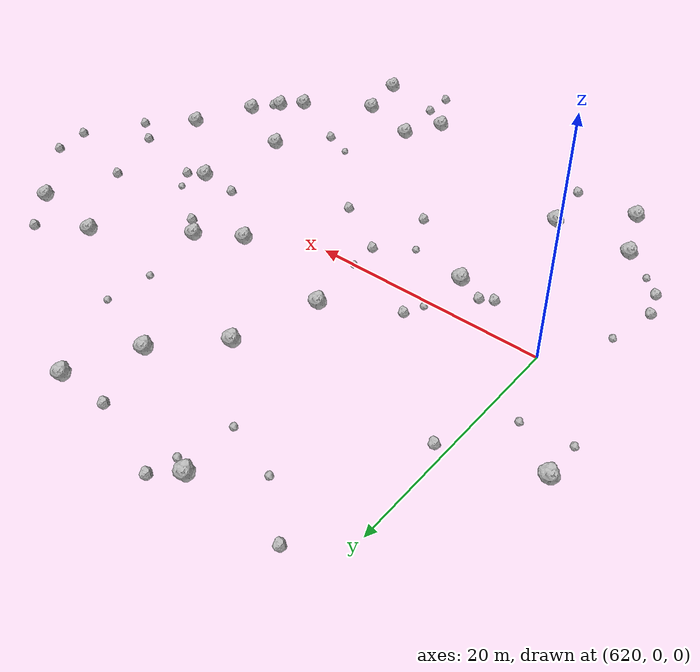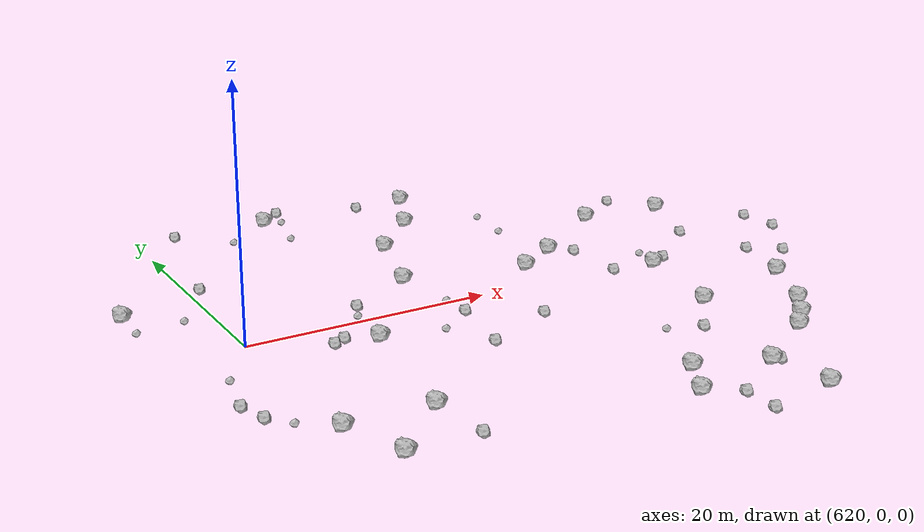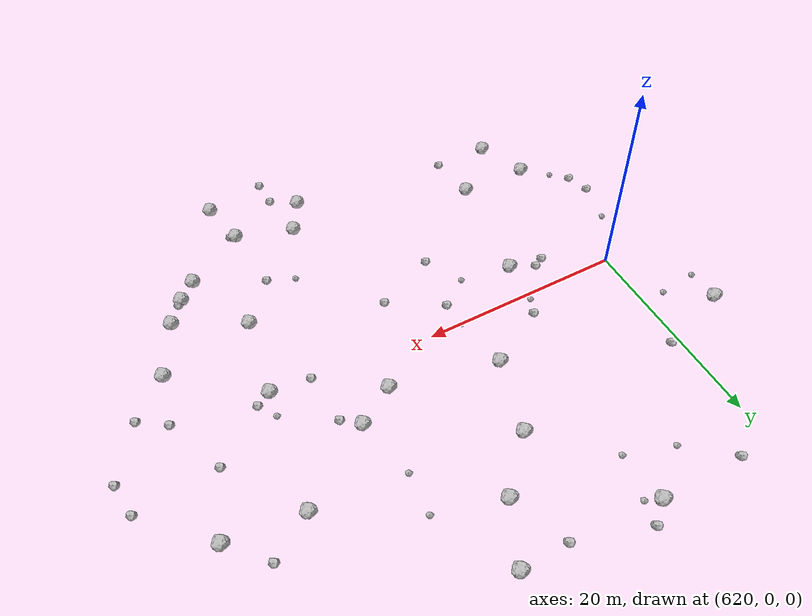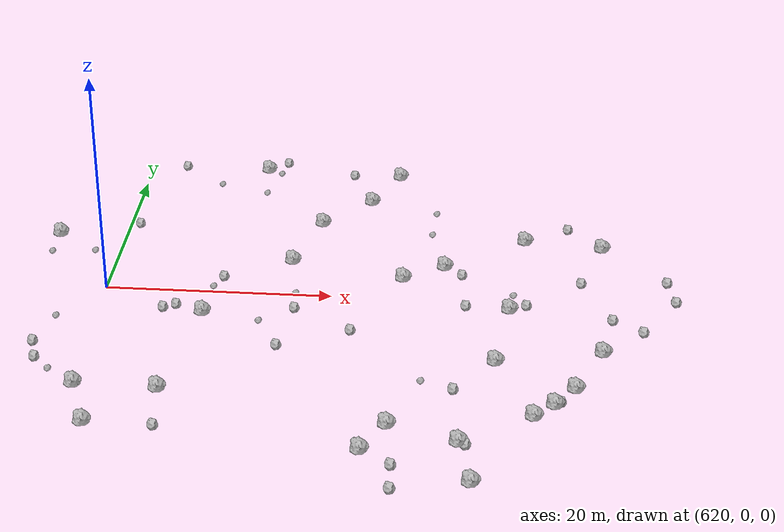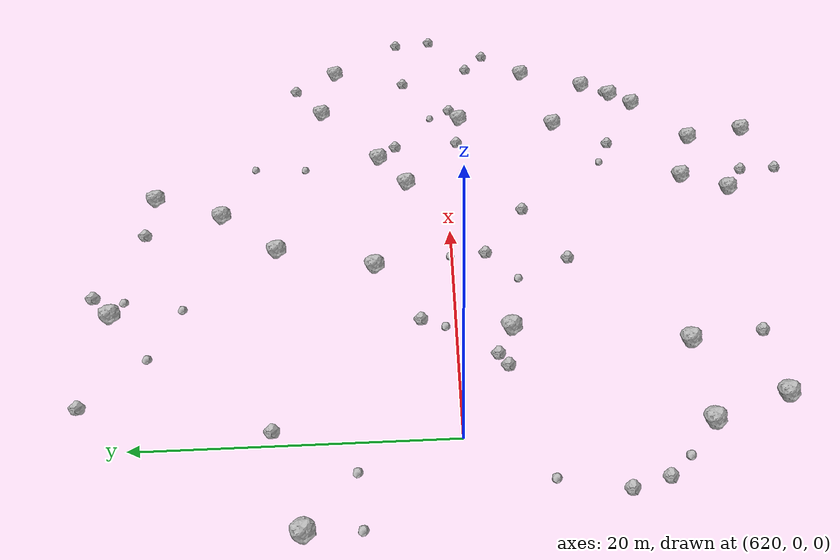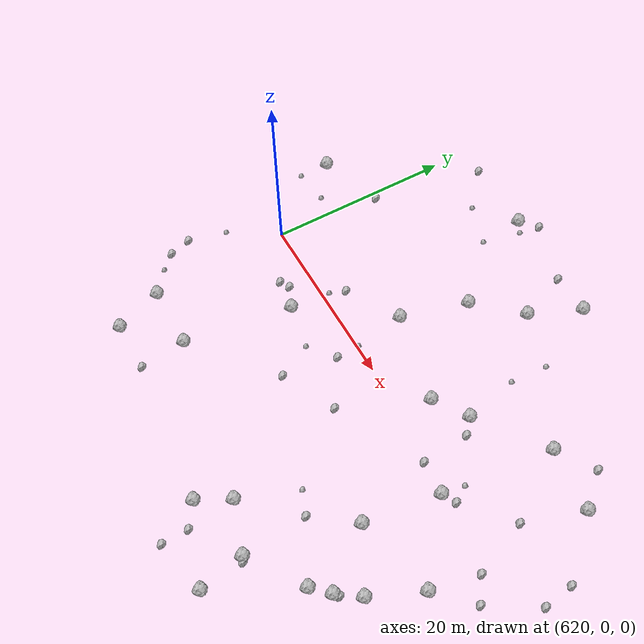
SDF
<sdf version="1.6">
 <world name="default">
  <include><uri>model://sun</uri></include>
  <model name="rock1_16_3">
   <include><uri>model://rock1</uri><pose>613.8526762108388 9.124440095897938 0.5 0 0 0</pose></include>
  </model>
  <model name="rock1_16_4">
   <include><uri>model://rock1</uri><pose>622.4320624749553 -20.544352006153765 0.5 0 0 0</pose></include>
  </model>
  <model name="rock1_16_5">
   <include><uri>model://rock1</uri><pose>663.293215973286 -7.634188353999555 0.5 0 0 0</pose></include>
  </model>
  <model name="rock1_16_6">
   <include><uri>model://rock1</uri><pose>638.0518589348472 12.931914421081423 0.5 0 0 0</pose></include>
  </model>
  <model name="rock1_16_7">
   <include><uri>model://rock1</uri><pose>655.5514319088636 -1.3592448641450119 0.5 0 0 0</pose></include>
  </model>
  <model name="rock1_16_8">
   <include><uri>model://rock1</uri><pose>631.6341331656774 23.62280296202421 0.5 0 0 0</pose></include>
  </model>
  <model name="rock1_16_9">
   <include><uri>model://rock1</uri><pose>644.8129737432026 23.050013467155416 0.5 0 0 0</pose></include>
  </model>
  <model name="rock1_16_10">
   <include><uri>model://rock1</uri><pose>660.8614911359022 -13.067576330176468 0.5 0 0 0</pose></include>
  </model>
  <model name="rock1_16_11">
   <include><uri>model://rock1</uri><pose>644.195002368872 -22.54371066841272 0.5 0 0 0</pose></include>
  </model>
  <model name="rock1_16_12">
   <include><uri>model://rock1</uri><pose>627.4102066938955 -15.524549203066107 0.5 0 0 0</pose></include>
  </model>
  <model name="rock1_16_13">
   <include><uri>model://rock1</uri><pose>656.9913572059183 10.792682444482665 0.5 0 0 0</pose></include>
  </model>
  <model name="rock1_16_14">
   <include><uri>model://rock1</uri><pose>620.5338285778649 -15.37924103850991 0.5 0 0 0</pose></include>
  </model>
  <model name="rock1_16_15">
   <include><uri>model://rock1</uri><pose>642.3785425523961 17.564204736193474 0.5 0 0 0</pose></include>
  </model>
  <model name="rock1_16_16">
   <include><uri>model://rock1</uri><pose>629.1868321765535 -3.72118863828225 0.5 0 0 0</pose></include>
  </model>
  <model name="rock1_16_17">
   <include><uri>model://rock1</uri><pose>652.7103533323094 -25.9343065552152 0.5 0 0 0</pose></include>
  </model>
  <model name="rock1_16_18">
   <include><uri>model://rock1</uri><pose>651.6620231710509 -21.002237406919484 0.5 0 0 0</pose></include>
  </model>
  <model name="rock1_16_19">
   <include><uri>model://rock1</uri><pose>636.0069230360912 5.659931086644292 0.5 0 0 0</pose></include>
  </model>
  <model name="rock1_16_20">
   <include><uri>model://rock1</uri><pose>659.1499994113229 -15.436293958323574 0.5 0 0 0</pose></include>
  </model>
  <model name="rock1_16_21">
   <include><uri>model://rock1</uri><pose>646.0433484529614 -19.095913451849608 0.5 0 0 0</pose></include>
  </model>
  <model name="rock1_16_22">
   <include><uri>model://rock1</uri><pose>663.9962754420927 9.956243544458253 0.5 0 0 0</pose></include>
  </model>
  <model name="rock1_16_23">
   <include><uri>model://rock1</uri><pose>654.4000216762316 -9.590869413534055 0.5 0 0 0</pose></include>
  </model>
  <model name="rock1_16_24">
   <include><uri>model://rock1</uri><pose>657.4626697567522 -17.151130039013 0.5 0 0 0</pose></include>
  </model>
  <model name="rock1_16_25">
   <include><uri>model://rock1</uri><pose>646.1206910915636 3.302308978528643 0.5 0 0 0</pose></include>
  </model>
  <model name="rock1_16_26">
   <include><uri>model://rock1</uri><pose>649.7554522993543 5.609845139659143 0.5 0 0 0</pose></include>
  </model>
  <model name="rock2_16_0">
   <include><uri>model://rock2</uri><pose>659.5825866229188 -14.992361467997881 0.3 0 0 0</pose></include>
  </model>
  <model name="rock2_16_1">
   <include><uri>model://rock2</uri><pose>620.9061436572825 11.54649451648028 0.3 0 0 0</pose></include>
  </model>
  <model name="rock2_16_2">
   <include><uri>model://rock2</uri><pose>637.0008320068011 -2.4770316226196236 0.3 0 0 0</pose></include>
  </model>
  <model name="rock2_16_3">
   <include><uri>model://rock2</uri><pose>651.0233935441333 -13.86329356608426 0.3 0 0 0</pose></include>
  </model>
  <model name="rock2_16_4">
   <include><uri>model://rock2</uri><pose>626.7243095715149 -2.6296835037631325 0.3 0 0 0</pose></include>
  </model>
  <model name="rock2_16_5">
   <include><uri>model://rock2</uri><pose>651.755238257956 -0.9960088112812144 0.3 0 0 0</pose></include>
  </model>
  <model name="rock2_16_6">
   <include><uri>model://rock2</uri><pose>646.6499828109526 -24.231172277116368 0.3 0 0 0</pose></include>
  </model>
  <model name="rock2_16_7">
   <include><uri>model://rock2</uri><pose>660.9566257513176 13.375419039794792 0.3 0 0 0</pose></include>
  </model>
  <model name="rock2_16_8">
   <include><uri>model://rock2</uri><pose>646.7506987452318 -27.112224575122664 0.3 0 0 0</pose></include>
  </model>
  <model name="rock2_16_9">
   <include><uri>model://rock2</uri><pose>661.8440077020302 3.5714443082247413 0.3 0 0 0</pose></include>
  </model>
  <model name="rock2_16_10">
   <include><uri>model://rock2</uri><pose>627.99391201705 -20.577556492526845 0.3 0 0 0</pose></include>
  </model>
  <model name="rock2_16_11">
   <include><uri>model://rock2</uri><pose>664.3073532121014 -2.4067202160684715 0.3 0 0 0</pose></include>
  </model>
  <model name="rock2_16_12">
   <include><uri>model://rock2</uri><pose>630.1966055433386 2.392264962481157 0.3 0 0 0</pose></include>
  </model>
  <model name="rock2_16_13">
   <include><uri>model://rock2</uri><pose>652.1708164191228 -21.216823713505452 0.3 0 0 0</pose></include>
  </model>
  <model name="rock2_16_14">
   <include><uri>model://rock2</uri><pose>623.3518682428421 23.75066177109833 0.3 0 0 0</pose></include>
  </model>
  <model name="rock2_16_15">
   <include><uri>model://rock2</uri><pose>625.6726108129075 -3.2014580684216014 0.3 0 0 0</pose></include>
  </model>
  <model name="rock2_16_16">
   <include><uri>model://rock2</uri><pose>666.8084107541374 -4.143341273566396 0.3 0 0 0</pose></include>
  </model>
  <model name="rock2_16_17">
   <include><uri>model://rock2</uri><pose>669.9559312466985 0.9764714833417223 0.3 0 0 0</pose></include>
  </model>
  <model name="rock2_16_18">
   <include><uri>model://rock2</uri><pose>669.4299233585837 4.242759623016312 0.3 0 0 0</pose></include>
  </model>
  <model name="rock2_16_19">
   <include><uri>model://rock2</uri><pose>636.1262851938704 -8.456848725317862 0.3 0 0 0</pose></include>
  </model>
  <model name="rock2_16_20">
   <include><uri>model://rock2</uri><pose>640.2358721430707 23.002057414660854 0.3 0 0 0</pose></include>
  </model>
  <model name="rock2_16_21">
   <include><uri>model://rock2</uri><pose>615.7695405168334 -9.404140614761939 0.3 0 0 0</pose></include>
  </model>
  <model name="rock2_16_22">
   <include><uri>model://rock2</uri><pose>616.4717659914256 -11.760893554942847 0.3 0 0 0</pose></include>
  </model>
  <model name="rock2_16_23">
   <include><uri>model://rock2</uri><pose>642.1069956177386 -5.68782325949002 0.3 0 0 0</pose></include>
  </model>
  <model name="rock2_16_24">
   <include><uri>model://rock2</uri><pose>651.3173360539791 4.24169706115994 0.3 0 0 0</pose></include>
  </model>
  <model name="rock2_16_25">
   <include><uri>model://rock2</uri><pose>633.394606155433 25.22720142042818 0.3 0 0 0</pose></include>
  </model>
  <model name="rock2_16_26">
   <include><uri>model://rock2</uri><pose>656.9900171090413 -0.5599323970700567 0.3 0 0 0</pose></include>
  </model>
  <model name="rock3_16_0">
   <include><uri>model://rock3</uri><pose>613.7777839854192 5.816280067399163 0.2 0 0 0</pose></include>
  </model>
  <model name="rock3_16_1">
   <include><uri>model://rock3</uri><pose>634.1319655442192 -4.677724101879214 0.2 0 0 0</pose></include>
  </model>
  <model name="rock3_16_2">
   <include><uri>model://rock3</uri><pose>627.3613931859247 20.273030181607304 0.2 0 0 0</pose></include>
  </model>
  <model name="rock3_16_3">
   <include><uri>model://rock3</uri><pose>636.8197035722379 0.10749782349029857 0.2 0 0 0</pose></include>
  </model>
  <model name="rock3_16_4">
   <include><uri>model://rock3</uri><pose>629.4689325683784 0.7073985366415698 0.2 0 0 0</pose></include>
  </model>
  <model name="rock3_16_5">
   <include><uri>model://rock3</uri><pose>632.9181627154445 22.968416605327036 0.2 0 0 0</pose></include>
  </model>
  <model name="rock3_16_6">
   <include><uri>model://rock3</uri><pose>616.7084948666153 -5.22329661332709 0.2 0 0 0</pose></include>
  </model>
  <model name="rock3_16_7">
   <include><uri>model://rock3</uri><pose>617.6733005050085 6.2552434635267815 0.2 0 0 0</pose></include>
  </model>
  <model name="rock3_16_8">
   <include><uri>model://rock3</uri><pose>631.9707723921915 18.77005713445378 0.2 0 0 0</pose></include>
  </model>
  <model name="rock3_16_9">
   <include><uri>model://rock3</uri><pose>648.6208626551031 15.666815903053148 0.2 0 0 0</pose></include>
  </model>
  <model name="rock3_16_10">
   <include><uri>model://rock3</uri><pose>648.3720442212324 11.564459133740264 0.2 0 0 0</pose></include>
  </model>
  <model name="rock3_16_11">
   <include><uri>model://rock3</uri><pose>655.8544982405932 1.1375395426128954 0.2 0 0 0</pose></include>
  </model>
  <model name="rock3_16_12">
   <include><uri>model://rock3</uri><pose>648.364209779939 -12.820698738316988 0.2 0 0 0</pose></include>
  </model>
  <model name="rock3_16_13">
   <include><uri>model://rock3</uri><pose>617.9368178916652 -13.350628517410644 0.2 0 0 0</pose></include>
  </model>
 </world>
</sdf>
